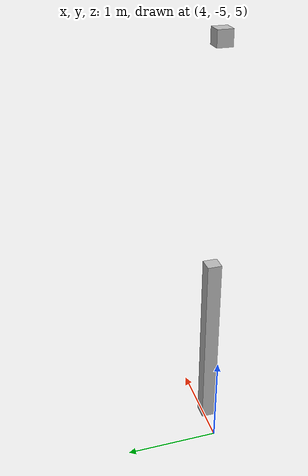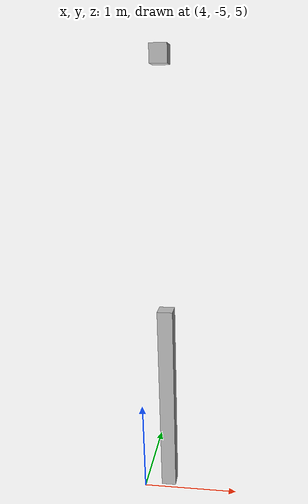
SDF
<sdf version="1.7">
 <world name="default">
  <model name="orthogonal_747_2.000.15_TS">
   <static>1</static>
   <link name="z_link_4_0_5">
    <inertial>
     <mass>1</mass>
     <inertia>
      <ixx>0.166667</ixx>
      <ixy>0</ixy>
      <ixz>0</ixz>
      <iyy>0.166667</iyy>
      <iyz>0</iyz>
      <izz>0.166667</izz>
     </inertia>
    </inertial>
    <pose>10.75 0 8.6 0 -0 0</pose>
    <visual name="visual_0">
     <laser_retro>3620</laser_retro>
     <geometry><box><size>0.15 1e-06 2</size></box></geometry>
     <material>
      <script><name>Gazebo/Grey</name><uri>file://media/materials/scripts/gazebo.material</uri></script>
      <shader type="pixel"><normal_map>__default__</normal_map></shader>
      <ambient>0.678 0.498 0.659 1</ambient>
      <diffuse>0.7 0.7 0.7 1</diffuse>
      <specular>0.01 0.01 0.01 1</specular>
      <emissive>0 0 0 1</emissive>
     </material>
     <pose>0 -0.075 0 0 -0 0</pose>
     <transparency>1</transparency>
    </visual>
    <visual name="visual_1">
     <laser_retro>3621</laser_retro>
     <geometry><box><size>0.15 1e-06 2</size></box></geometry>
     <material>
      <script><name>Gazebo/Grey</name><uri>file://media/materials/scripts/gazebo.material</uri></script>
      <shader type="pixel"><normal_map>__default__</normal_map></shader>
      <ambient>0.447 0.624 0.812 1</ambient>
      <diffuse>0.7 0.7 0.7 1</diffuse>
      <specular>0.01 0.01 0.01 1</specular>
      <emissive>0 0 0 1</emissive>
     </material>
     <pose>0 0.075 0 0 -0 0</pose>
     <transparency>1</transparency>
    </visual>
    <visual name="visual_2">
     <laser_retro>3622</laser_retro>
     <geometry><box><size>0.15 0.15 1e-06</size></box></geometry>
     <material>
      <script><name>Gazebo/Grey</name><uri>file://media/materials/scripts/gazebo.material</uri></script>
      <shader type="pixel"><normal_map>__default__</normal_map></shader>
      <ambient>0.988 0.686 0.243 1</ambient>
      <diffuse>0.7 0.7 0.7 1</diffuse>
      <specular>0.01 0.01 0.01 1</specular>
      <emissive>0 0 0 1</emissive>
     </material>
     <pose>0 0 -1 0 -0 0</pose>
     <transparency>1</transparency>
    </visual>
    <visual name="visual_3">
     <laser_retro>3623</laser_retro>
     <geometry><box><size>1e-06 0.15 2</size></box></geometry>
     <material>
      <script><name>Gazebo/Grey</name><uri>file://media/materials/scripts/gazebo.material</uri></script>
      <shader type="pixel"><normal_map>__default__</normal_map></shader>
      <ambient>0.988 0.914 0.31 1</ambient>
      <diffuse>0.7 0.7 0.7 1</diffuse>
      <specular>0.01 0.01 0.01 1</specular>
      <emissive>0 0 0 1</emissive>
     </material>
     <pose>0.075 0 0 0 -0 0</pose>
     <transparency>1</transparency>
    </visual>
    <visual name="visual_4">
     <laser_retro>3624</laser_retro>
     <geometry><box><size>0.15 0.15 1e-06</size></box></geometry>
     <material>
      <script><name>Gazebo/Grey</name><uri>file://media/materials/scripts/gazebo.material</uri></script>
      <shader type="pixel"><normal_map>__default__</normal_map></shader>
      <ambient>0.937 0.161 0.161 1</ambient>
      <diffuse>0.7 0.7 0.7 1</diffuse>
      <specular>0.01 0.01 0.01 1</specular>
      <emissive>0 0 0 1</emissive>
     </material>
     <pose>0 0 1 0 -0 0</pose>
     <transparency>1</transparency>
    </visual>
    <visual name="visual_5">
     <laser_retro>3625</laser_retro>
     <geometry><box><size>1e-06 0.15 2</size></box></geometry>
     <material>
      <script><name>Gazebo/Grey</name><uri>file://media/materials/scripts/gazebo.material</uri></script>
      <shader type="pixel"><normal_map>__default__</normal_map></shader>
      <ambient>0.541 0.886 0.204 1</ambient>
      <diffuse>0.7 0.7 0.7 1</diffuse>
      <specular>0.01 0.01 0.01 1</specular>
      <emissive>0 0 0 1</emissive>
     </material>
     <pose>-0.075 0 0 0 -0 0</pose>
     <transparency>1</transparency>
    </visual>
    <visual name="visual_texture">
     <geometry><box><size>0.149985 0.149985 1.9998</size></box></geometry>
     <material>
      <script>
       <uri>model://BASE_MODELS/simple_block_v2_textured/materials/scripts</uri>
       <uri>model://BASE_MODELS/simple_block_v2_textured/materials/textures</uri>
       <name>metal</name>
      </script>
     </material>
     <laser_retro>3626</laser_retro>
    </visual>
    <collision name="collision">
     <geometry><box><size>0.15 0.15 2</size></box></geometry>
     <surface>
      <friction>
       <ode><mu>1</mu><mu2>1</mu2><fdir1>0 0 0</fdir1><slip1>0</slip1><slip2>0</slip2></ode>
       <torsional>
        <coefficient>1</coefficient>
        <patch_radius>0</patch_radius>
        <surface_radius>0</surface_radius>
        <use_patch_radius>1</use_patch_radius>
        <ode><slip>0</slip></ode>
       </torsional>
      </friction>
      <bounce><restitution_coefficient>0</restitution_coefficient><threshold>1e+06</threshold></bounce>
      <contact>
       <collide_without_contact>0</collide_without_contact>
       <collide_without_contact_bitmask>1</collide_without_contact_bitmask>
       <collide_bitmask>1</collide_bitmask>
       <ode>
        <soft_cfm>0</soft_cfm>
        <soft_erp>0.2</soft_erp>
        <kp>1e+13</kp>
        <kd>1</kd>
        <max_vel>0.01</max_vel>
        <min_depth>0</min_depth>
       </ode>
       <bullet>
        <split_impulse>1</split_impulse>
        <split_impulse_penetration_threshold>-0.01</split_impulse_penetration_threshold>
        <soft_cfm>0</soft_cfm>
        <soft_erp>0.2</soft_erp>
        <kp>1e+13</kp>
        <kd>1</kd>
       </bullet>
      </contact>
     </surface>
    </collision>
   </link>
   <link name="u_link_5_0_5">
    <inertial>
     <mass>1</mass>
     <inertia>
      <ixx>0.166667</ixx>
      <ixy>0</ixy>
      <ixz>0</ixz>
      <iyy>0.166667</iyy>
      <iyz>0</iyz>
      <izz>0.166667</izz>
     </inertia>
    </inertial>
    <pose>10.75 0 11.825 0 -0 0</pose>
    <visual name="visual_0">
     <laser_retro>4516</laser_retro>
     <geometry><box><size>0.15 1e-06 0.15</size></box></geometry>
     <material>
      <script><name>Gazebo/Grey</name><uri>file://media/materials/scripts/gazebo.material</uri></script>
      <shader type="pixel"><normal_map>__default__</normal_map></shader>
      <ambient>0.678 0.498 0.659 1</ambient>
      <diffuse>0.7 0.7 0.7 1</diffuse>
      <specular>0.01 0.01 0.01 1</specular>
      <emissive>0 0 0 1</emissive>
     </material>
     <pose>0 -0.075 0 0 -0 0</pose>
     <transparency>1</transparency>
    </visual>
    <visual name="visual_1">
     <laser_retro>4517</laser_retro>
     <geometry><box><size>0.15 1e-06 0.15</size></box></geometry>
     <material>
      <script><name>Gazebo/Grey</name><uri>file://media/materials/scripts/gazebo.material</uri></script>
      <shader type="pixel"><normal_map>__default__</normal_map></shader>
      <ambient>0.447 0.624 0.812 1</ambient>
      <diffuse>0.7 0.7 0.7 1</diffuse>
      <specular>0.01 0.01 0.01 1</specular>
      <emissive>0 0 0 1</emissive>
     </material>
     <pose>0 0.075 0 0 -0 0</pose>
     <transparency>1</transparency>
    </visual>
    <visual name="visual_2">
     <laser_retro>4518</laser_retro>
     <geometry><box><size>0.15 0.15 1e-06</size></box></geometry>
     <material>
      <script><name>Gazebo/Grey</name><uri>file://media/materials/scripts/gazebo.material</uri></script>
      <shader type="pixel"><normal_map>__default__</normal_map></shader>
      <ambient>0.988 0.686 0.243 1</ambient>
      <diffuse>0.7 0.7 0.7 1</diffuse>
      <specular>0.01 0.01 0.01 1</specular>
      <emissive>0 0 0 1</emissive>
     </material>
     <pose>0 0 -0.075 0 -0 0</pose>
     <transparency>1</transparency>
    </visual>
    <visual name="visual_3">
     <laser_retro>4519</laser_retro>
     <geometry><box><size>1e-06 0.15 0.15</size></box></geometry>
     <material>
      <script><name>Gazebo/Grey</name><uri>file://media/materials/scripts/gazebo.material</uri></script>
      <shader type="pixel"><normal_map>__default__</normal_map></shader>
      <ambient>0.988 0.914 0.31 1</ambient>
      <diffuse>0.7 0.7 0.7 1</diffuse>
      <specular>0.01 0.01 0.01 1</specular>
      <emissive>0 0 0 1</emissive>
     </material>
     <pose>0.075 0 0 0 -0 0</pose>
     <transparency>1</transparency>
    </visual>
    <visual name="visual_4">
     <laser_retro>4520</laser_retro>
     <geometry><box><size>0.15 0.15 1e-06</size></box></geometry>
     <material>
      <script><name>Gazebo/Grey</name><uri>file://media/materials/scripts/gazebo.material</uri></script>
      <shader type="pixel"><normal_map>__default__</normal_map></shader>
      <ambient>0.937 0.161 0.161 1</ambient>
      <diffuse>0.7 0.7 0.7 1</diffuse>
      <specular>0.01 0.01 0.01 1</specular>
      <emissive>0 0 0 1</emissive>
     </material>
     <pose>0 0 0.075 0 -0 0</pose>
     <transparency>1</transparency>
    </visual>
    <visual name="visual_5">
     <laser_retro>4521</laser_retro>
     <geometry><box><size>1e-06 0.15 0.15</size></box></geometry>
     <material>
      <script><name>Gazebo/Grey</name><uri>file://media/materials/scripts/gazebo.material</uri></script>
      <shader type="pixel"><normal_map>__default__</normal_map></shader>
      <ambient>0.541 0.886 0.204 1</ambient>
      <diffuse>0.7 0.7 0.7 1</diffuse>
      <specular>0.01 0.01 0.01 1</specular>
      <emissive>0 0 0 1</emissive>
     </material>
     <pose>-0.075 0 0 0 -0 0</pose>
     <transparency>1</transparency>
    </visual>
    <visual name="visual_texture">
     <geometry><box><size>0.149985 0.149985 0.149985</size></box></geometry>
     <material>
      <script>
       <uri>model://BASE_MODELS/simple_block_v2_textured/materials/scripts</uri>
       <uri>model://BASE_MODELS/simple_block_v2_textured/materials/textures</uri>
       <name>metal</name>
      </script>
     </material>
     <laser_retro>4522</laser_retro>
    </visual>
    <collision name="collision">
     <geometry><box><size>0.15 0.15 0.15</size></box></geometry>
     <surface>
      <friction>
       <ode><mu>1</mu><mu2>1</mu2><fdir1>0 0 0</fdir1><slip1>0</slip1><slip2>0</slip2></ode>
       <torsional>
        <coefficient>1</coefficient>
        <patch_radius>0</patch_radius>
        <surface_radius>0</surface_radius>
        <use_patch_radius>1</use_patch_radius>
        <ode><slip>0</slip></ode>
       </torsional>
      </friction>
      <bounce><restitution_coefficient>0</restitution_coefficient><threshold>1e+06</threshold></bounce>
      <contact>
       <collide_without_contact>0</collide_without_contact>
       <collide_without_contact_bitmask>1</collide_without_contact_bitmask>
       <collide_bitmask>1</collide_bitmask>
       <ode>
        <soft_cfm>0</soft_cfm>
        <soft_erp>0.2</soft_erp>
        <kp>1e+13</kp>
        <kd>1</kd>
        <max_vel>0.01</max_vel>
        <min_depth>0</min_depth>
       </ode>
       <bullet>
        <split_impulse>1</split_impulse>
        <split_impulse_penetration_threshold>-0.01</split_impulse_penetration_threshold>
        <soft_cfm>0</soft_cfm>
        <soft_erp>0.2</soft_erp>
        <kp>1e+13</kp>
        <kd>1</kd>
       </bullet>
      </contact>
     </surface>
    </collision>
   </link>
   <pose>-6.47624 -5 -2.5 0 -0 0</pose>
  </model>
 </world>
</sdf>
